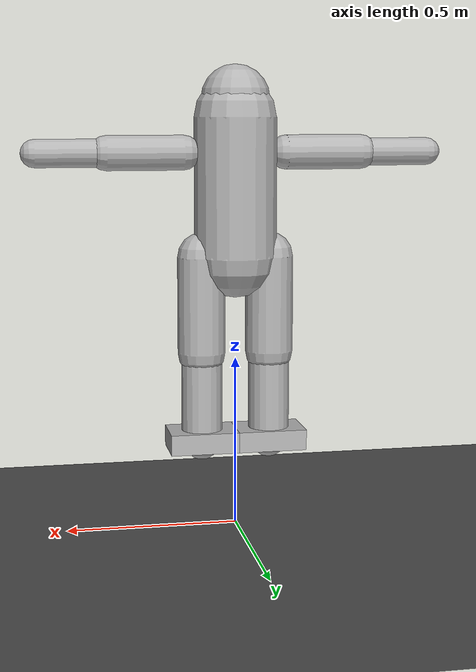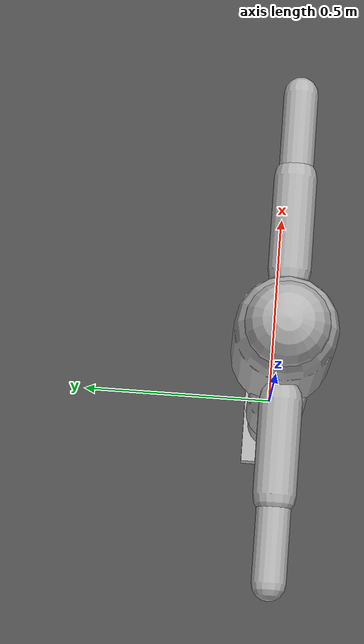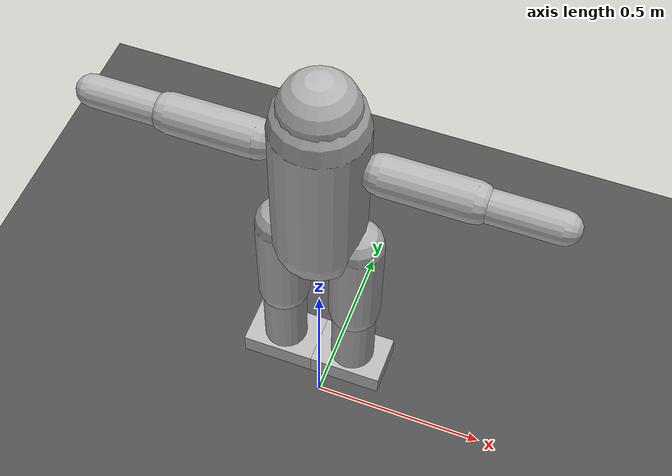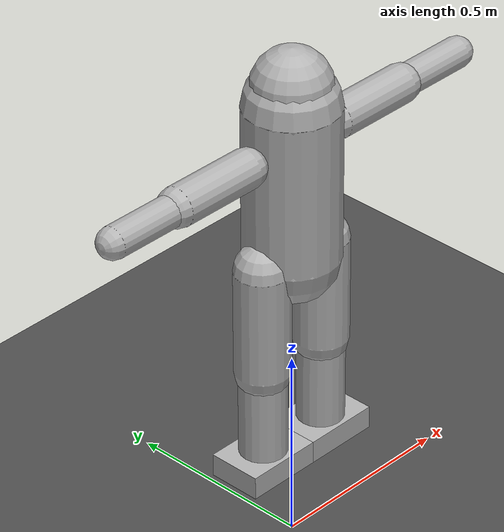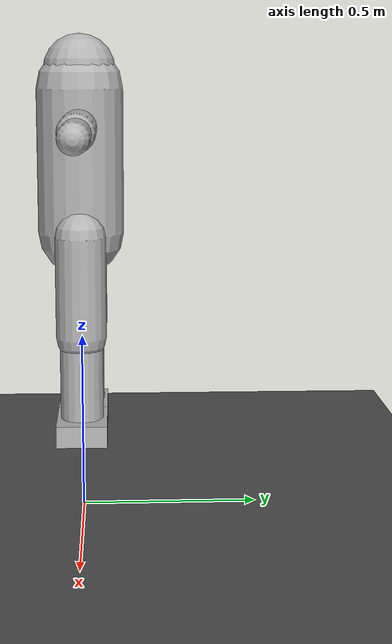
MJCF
<mujoco model="stable_humanoid">
  <compiler angle="radian" inertiafromgeom="true"/>
  <option gravity="0 0 -9.81" timestep="0.002"/>

  <asset>
    <material name="body" rgba="0.7 0.7 0.7 1"/>
    <material name="floor" rgba="0.3 0.3 0.3 1"/>
  </asset>

  <worldbody>
    <light pos="0 0 4"/>
    <camera name="cam" pos="0 -3.5 1.2" xyaxes="1 0 0 0 0.6 1"/>
    <geom name="ground" type="plane" size="4 4 0.1" material="floor" friction="2.5 1 1"/>

    <body name="body" pos="0 0 1.0">
      <freejoint/>
      <geom type="capsule" size="0.12 0.2" mass="5" material="body"/>

      <body pos="0 0 0.25">
        <geom type="sphere" size="0.1" mass="1" material="body"/>
      </body>

      <body pos="-0.15 0 0.1">
        <joint name="l_shoulder" type="hinge" axis="0 1 0" range="-1.2 1.2" damping="2" ref="0"/>
        <geom type="capsule" fromto="0 0 0 -0.22 0 0" size="0.05 0.05" mass="1" material="body"/>
        <body pos="-0.22 0 0">
          <joint name="l_elbow" type="hinge" axis="0 1 0" range="0 1.6" damping="1.5" ref="0"/>
          <geom type="capsule" fromto="0 0 0 -0.2 0 0" size="0.04 0.04" mass="0.8" material="body"/>
        </body>
      </body>

      <body pos="0.15 0 0.1">
        <joint name="r_shoulder" type="hinge" axis="0 1 0" range="-1.2 1.2" damping="2" ref="0"/>
        <geom type="capsule" fromto="0 0 0 0.22 0 0" size="0.05 0.05" mass="1" material="body"/>
        <body pos="0.22 0 0">
          <joint name="r_elbow" type="hinge" axis="0 1 0" range="0 1.6" damping="1.5" ref="0"/>
          <geom type="capsule" fromto="0 0 0 0.2 0 0" size="0.04 0.04" mass="0.8" material="body"/>
        </body>
      </body>

      <body pos="-0.1 0 -0.2">
        <joint name="l_hip" type="hinge" axis="0 1 0" range="-0.8 0.8" damping="3" ref="0"/>
        <geom type="capsule" fromto="0 0 0 0 0 -0.28" size="0.07 0.07" mass="2.2" material="body"/>
        <body pos="0 0 -0.28">
          <joint name="l_knee" type="hinge" axis="0 1 0" range="0 1.2" damping="3.5" ref="0"/>
          <geom type="capsule" fromto="0 0 0 0 0 -0.26" size="0.06 0.06" mass="2" material="body"/>
          <body pos="0 0 -0.26">
            <joint name="l_ankle" type="hinge" axis="0 1 0" range="-0.6 0.6" damping="2.5" ref="0"/>
            <geom type="box" size="0.1 0.07 0.03" mass="0.6" friction="3" material="body"/>
          </body>
        </body>
      </body>

      <body pos="0.1 0 -0.2">
        <joint name="r_hip" type="hinge" axis="0 1 0" range="-0.8 0.8" damping="3" ref="0"/>
        <geom type="capsule" fromto="0 0 0 0 0 -0.28" size="0.07 0.07" mass="2.2" material="body"/>
        <body pos="0 0 -0.28">
          <joint name="r_knee" type="hinge" axis="0 1 0" range="0 1.2" damping="3.5" ref="0"/>
          <geom type="capsule" fromto="0 0 0 0 0 -0.26" size="0.06 0.06" mass="2" material="body"/>
          <body pos="0 0 -0.26">
            <joint name="r_ankle" type="hinge" axis="0 1 0" range="-0.6 0.6" damping="2.5" ref="0"/>
            <geom type="box" size="0.1 0.07 0.03" mass="0.6" friction="3" material="body"/>
          </body>
        </body>
      </body>
    </body>
  </worldbody>

  <actuator>
    <position joint="l_shoulder" kp="80"/>
    <position joint="l_elbow"   kp="70"/>
    <position joint="r_shoulder" kp="80"/>
    <position joint="r_elbow"   kp="70"/>
    <position joint="l_hip"     kp="120"/>
    <position joint="l_knee"    kp="160"/>
    <position joint="l_ankle"   kp="90"/>
    <position joint="r_hip"     kp="120"/>
    <position joint="r_knee"    kp="160"/>
    <position joint="r_ankle"   kp="90"/>
  </actuator>
</mujoco>
